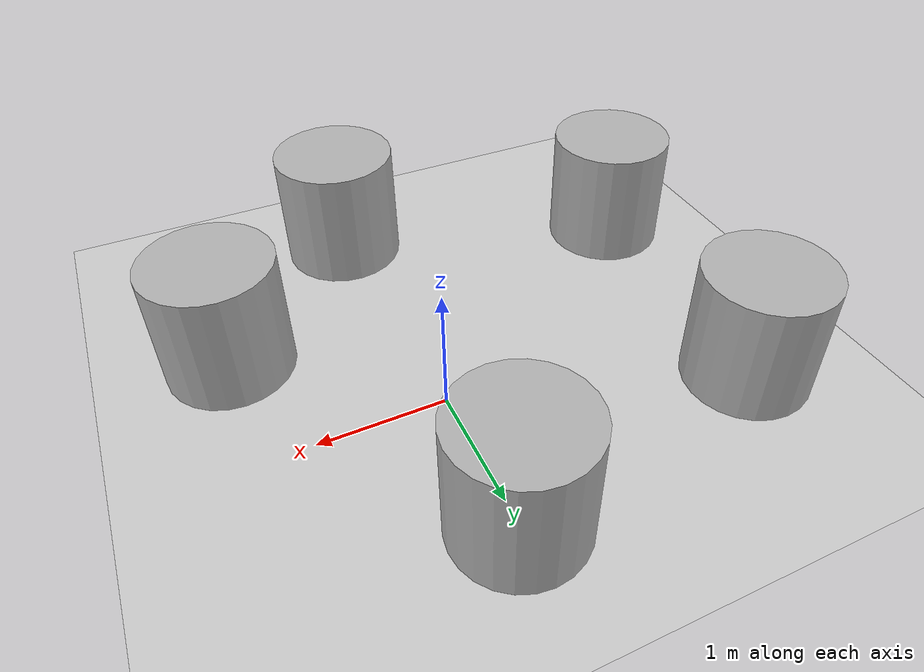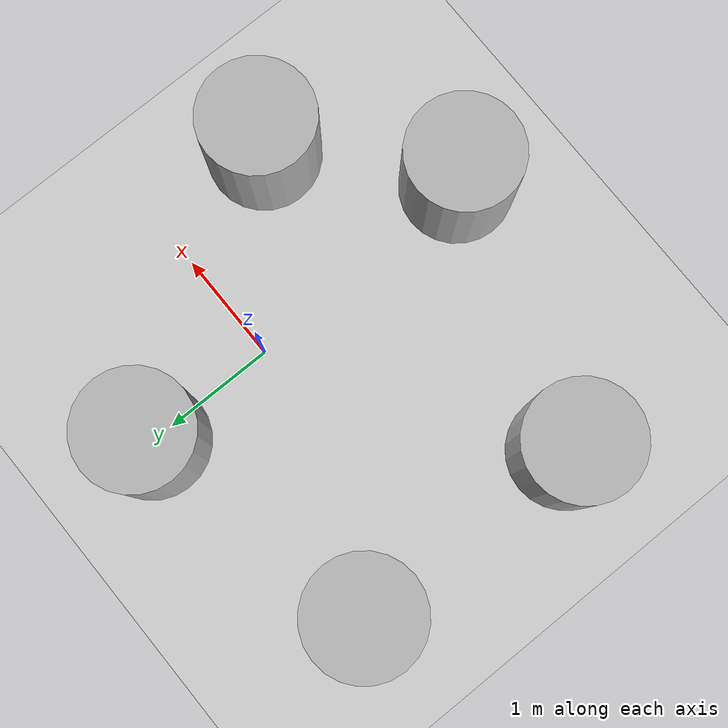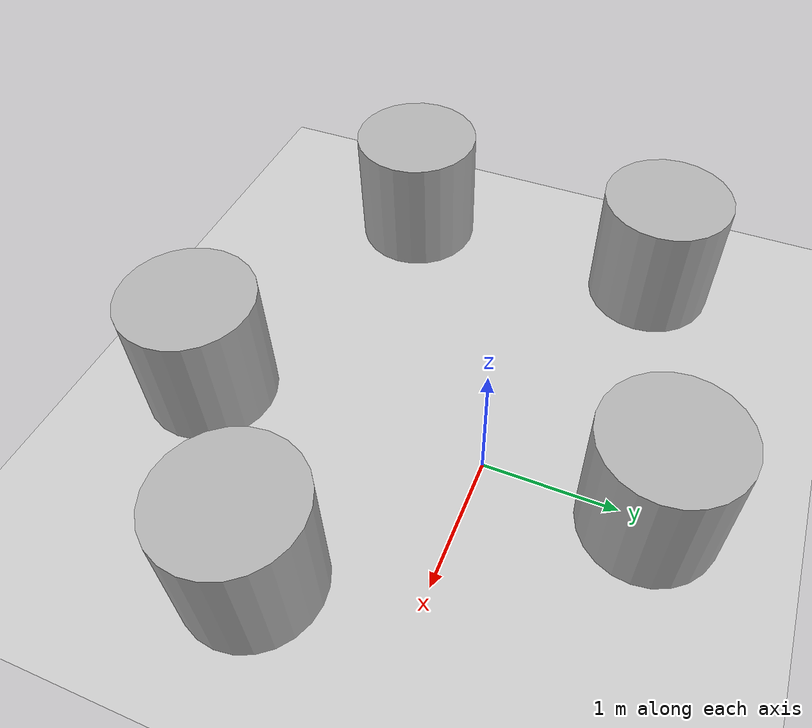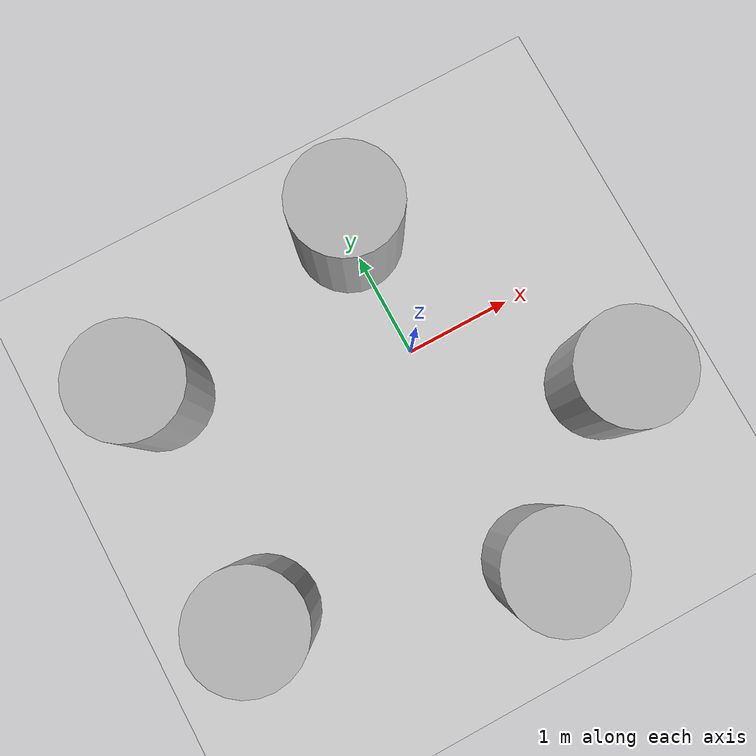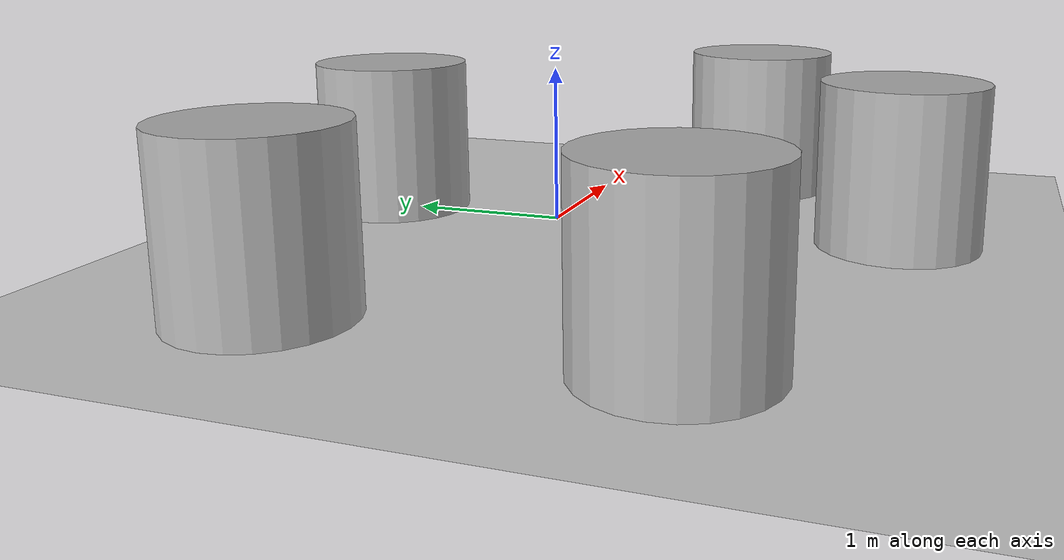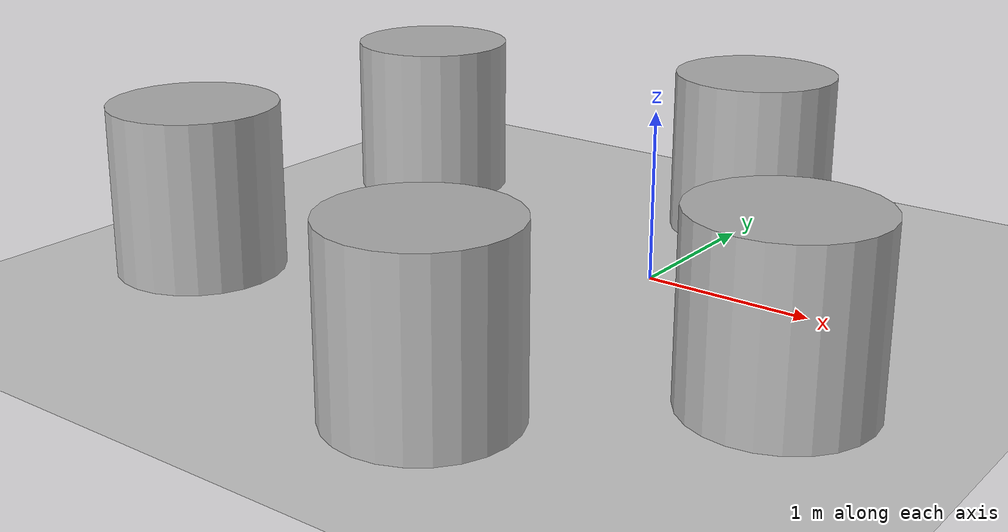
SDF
<sdf version='1.10'>
  <world name='empty'>
    <physics name='1ms' type='ignored'>
      <max_step_size>0.001</max_step_size>
      <real_time_factor>1</real_time_factor>
      <real_time_update_rate>1000</real_time_update_rate>
    </physics>
    <plugin name='gz::sim::systems::Physics' filename='gz-sim-physics-system'/>
    <plugin name='gz::sim::systems::UserCommands' filename='gz-sim-user-commands-system'/>
    <plugin name='gz::sim::systems::SceneBroadcaster' filename='gz-sim-scene-broadcaster-system'/>
    <plugin name='gz::sim::systems::Contact' filename='gz-sim-contact-system'/>
    <gravity>0 0 -9.8000000000000007</gravity>
    <magnetic_field>5.5644999999999998e-06 2.2875799999999999e-05 -4.2388400000000002e-05</magnetic_field>
    <atmosphere type='adiabatic'/>
    <scene>
      <ambient>0.400000006 0.400000006 0.400000006 1</ambient>
      <background>0.699999988 0.699999988 0.699999988 1</background>
      <shadows>true</shadows>
    </scene>
    <model name='ground_plane'>
      <static>true</static>
      <link name='link'>
        <collision name='collision'>
          <geometry>
            <plane>
              <normal>0 0 1</normal>
              <size>100 100</size>
            </plane>
          </geometry>
          <surface>
            <friction>
              <ode/>
            </friction>
            <bounce/>
            <contact/>
          </surface>
        </collision>
        <visual name='visual'>
          <geometry>
            <plane>
              <normal>0 0 1</normal>
              <size>100 100</size>
            </plane>
          </geometry>
          <material>
            <ambient>0.800000012 0.800000012 0.800000012 1</ambient>
            <diffuse>0.800000012 0.800000012 0.800000012 1</diffuse>
            <specular>0.800000012 0.800000012 0.800000012 1</specular>
          </material>
        </visual>
        <pose>0 0 0 0 0 0</pose>
        <inertial>
          <pose>0 0 0 0 0 0</pose>
          <mass>1</mass>
          <inertia>
            <ixx>1</ixx>
            <ixy>0</ixy>
            <ixz>0</ixz>
            <iyy>1</iyy>
            <iyz>0</iyz>
            <izz>1</izz>
          </inertia>
        </inertial>
        <enable_wind>false</enable_wind>
      </link>
      <pose>0 0 0 0 0 0</pose>
      <self_collide>false</self_collide>
    </model>
    <model name='cylinder'>
      <pose>-2.2078823255293485 0.71306694905840962 0.49999942638036005 2.0227996488335181e-19 4.0253760082251835e-19 1.243740584094707e-21</pose>
      <link name='cylinder_link'>
        <inertial>
          <inertia>
            <ixx>0.14580000000000001</ixx>
            <ixy>0</ixy>
            <ixz>0</ixz>
            <iyy>0.14580000000000001</iyy>
            <iyz>0</iyz>
            <izz>0.125</izz>
          </inertia>
          <mass>1</mass>
          <pose>0 0 0 0 0 0</pose>
        </inertial>
        <collision name='cylinder_collision'>
          <geometry>
            <cylinder>
              <radius>0.5</radius>
              <length>1</length>
            </cylinder>
          </geometry>
          <surface>
            <friction>
              <ode/>
            </friction>
            <bounce/>
            <contact/>
          </surface>
        </collision>
        <visual name='cylinder_visual'>
          <geometry>
            <cylinder>
              <radius>0.5</radius>
              <length>1</length>
            </cylinder>
          </geometry>
          <material>
            <ambient>0.300000012 0.300000012 0.300000012 1</ambient>
            <diffuse>0.699999988 0.699999988 0.699999988 1</diffuse>
            <specular>1 1 1 1</specular>
          </material>
        </visual>
        <pose>0 0 0 0 0 0</pose>
        <enable_wind>false</enable_wind>
      </link>
      <static>false</static>
      <self_collide>false</self_collide>
    </model>
    <model name='cylinder_0'>
      <pose>0.0011656331468292702 1.1959121511321857 0.49999942638036005 6.9969603741595457e-20 1.6401258915142685e-19 4.1034372072093035e-21</pose>
      <link name='cylinder_link'>
        <inertial>
          <inertia>
            <ixx>0.14580000000000001</ixx>
            <ixy>0</ixy>
            <ixz>0</ixz>
            <iyy>0.14580000000000001</iyy>
            <iyz>0</iyz>
            <izz>0.125</izz>
          </inertia>
          <mass>1</mass>
          <pose>0 0 0 0 0 0</pose>
        </inertial>
        <collision name='cylinder_collision'>
          <geometry>
            <cylinder>
              <radius>0.5</radius>
              <length>1</length>
            </cylinder>
          </geometry>
          <surface>
            <friction>
              <ode/>
            </friction>
            <bounce/>
            <contact/>
          </surface>
        </collision>
        <visual name='cylinder_visual'>
          <geometry>
            <cylinder>
              <radius>0.5</radius>
              <length>1</length>
            </cylinder>
          </geometry>
          <material>
            <ambient>0.300000012 0.300000012 0.300000012 1</ambient>
            <diffuse>0.699999988 0.699999988 0.699999988 1</diffuse>
            <specular>1 1 1 1</specular>
          </material>
        </visual>
        <pose>0 0 0 0 0 0</pose>
        <enable_wind>false</enable_wind>
      </link>
      <static>false</static>
      <self_collide>false</self_collide>
    </model>
    <model name='cylinder_1'>
      <pose>-2.2394957707251844 -1.432149071633364 0.49999942638036005 7.004251475933073e-20 3.2904107566269066e-19 4.0914608968945336e-20</pose>
      <link name='cylinder_link'>
        <inertial>
          <inertia>
            <ixx>0.14580000000000001</ixx>
            <ixy>0</ixy>
            <ixz>0</ixz>
            <iyy>0.14580000000000001</iyy>
            <iyz>0</iyz>
            <izz>0.125</izz>
          </inertia>
          <mass>1</mass>
          <pose>0 0 0 0 0 0</pose>
        </inertial>
        <collision name='cylinder_collision'>
          <geometry>
            <cylinder>
              <radius>0.5</radius>
              <length>1</length>
            </cylinder>
          </geometry>
          <surface>
            <friction>
              <ode/>
            </friction>
            <bounce/>
            <contact/>
          </surface>
        </collision>
        <visual name='cylinder_visual'>
          <geometry>
            <cylinder>
              <radius>0.5</radius>
              <length>1</length>
            </cylinder>
          </geometry>
          <material>
            <ambient>0.300000012 0.300000012 0.300000012 1</ambient>
            <diffuse>0.699999988 0.699999988 0.699999988 1</diffuse>
            <specular>1 1 1 1</specular>
          </material>
        </visual>
        <pose>0 0 0 0 0 0</pose>
        <enable_wind>false</enable_wind>
      </link>
      <static>false</static>
      <self_collide>false</self_collide>
    </model>
    <model name='cylinder_2'>
      <pose>0.09241362177370771 -2.1874398326360982 0.49999942638036005 9.8378293630992474e-20 -5.4062312597494282e-19 -1.0855113568351996e-20</pose>
      <link name='cylinder_link'>
        <inertial>
          <inertia>
            <ixx>0.14580000000000001</ixx>
            <ixy>0</ixy>
            <ixz>0</ixz>
            <iyy>0.14580000000000001</iyy>
            <iyz>0</iyz>
            <izz>0.125</izz>
          </inertia>
          <mass>1</mass>
          <pose>0 0 0 0 0 0</pose>
        </inertial>
        <collision name='cylinder_collision'>
          <geometry>
            <cylinder>
              <radius>0.5</radius>
              <length>1</length>
            </cylinder>
          </geometry>
          <surface>
            <friction>
              <ode/>
            </friction>
            <bounce/>
            <contact/>
          </surface>
        </collision>
        <visual name='cylinder_visual'>
          <geometry>
            <cylinder>
              <radius>0.5</radius>
              <length>1</length>
            </cylinder>
          </geometry>
          <material>
            <ambient>0.300000012 0.300000012 0.300000012 1</ambient>
            <diffuse>0.699999988 0.699999988 0.699999988 1</diffuse>
            <specular>1 1 1 1</specular>
          </material>
        </visual>
        <pose>0 0 0 0 0 0</pose>
        <enable_wind>false</enable_wind>
      </link>
      <static>false</static>
      <self_collide>false</self_collide>
    </model>
    <model name='cylinder_3'>
      <pose>1.3640735741194858 -1.0848877171085611 0.49999942638036005 2.6173307162098352e-19 6.2886229743816442e-19 -9.6258094767927148e-21</pose>
      <link name='cylinder_link'>
        <inertial>
          <inertia>
            <ixx>0.14580000000000001</ixx>
            <ixy>0</ixy>
            <ixz>0</ixz>
            <iyy>0.14580000000000001</iyy>
            <iyz>0</iyz>
            <izz>0.125</izz>
          </inertia>
          <mass>1</mass>
          <pose>0 0 0 0 0 0</pose>
        </inertial>
        <collision name='cylinder_collision'>
          <geometry>
            <cylinder>
              <radius>0.5</radius>
              <length>1</length>
            </cylinder>
          </geometry>
          <surface>
            <friction>
              <ode/>
            </friction>
            <bounce/>
            <contact/>
          </surface>
        </collision>
        <visual name='cylinder_visual'>
          <geometry>
            <cylinder>
              <radius>0.5</radius>
              <length>1</length>
            </cylinder>
          </geometry>
          <material>
            <ambient>0.300000012 0.300000012 0.300000012 1</ambient>
            <diffuse>0.699999988 0.699999988 0.699999988 1</diffuse>
            <specular>1 1 1 1</specular>
          </material>
        </visual>
        <pose>0 0 0 0 0 0</pose>
        <enable_wind>false</enable_wind>
      </link>
      <static>false</static>
      <self_collide>false</self_collide>
    </model>
    <light name='sun' type='directional'>
      <pose>0 0 10 0 0 0</pose>
      <cast_shadows>true</cast_shadows>
      <intensity>1</intensity>
      <direction>-0.5 0.10000000000000001 -0.90000000000000002</direction>
      <diffuse>0.800000012 0.800000012 0.800000012 1</diffuse>
      <specular>0.200000003 0.200000003 0.200000003 1</specular>
      <attenuation>
        <range>1000</range>
        <linear>0.01</linear>
        <constant>0.90000000000000002</constant>
        <quadratic>0.001</quadratic>
      </attenuation>
      <spot>
        <inner_angle>0</inner_angle>
        <outer_angle>0</outer_angle>
        <falloff>0</falloff>
      </spot>
    </light>
  </world>
</sdf>
